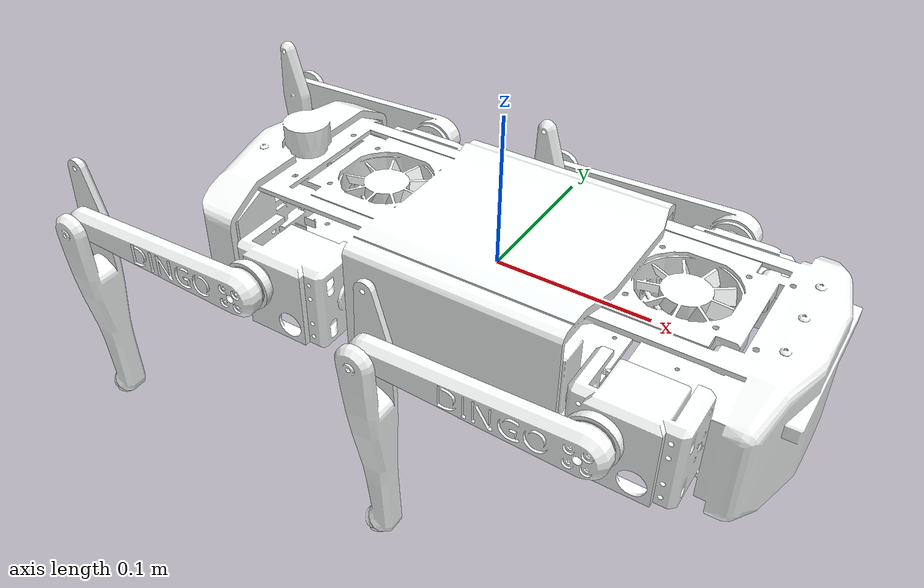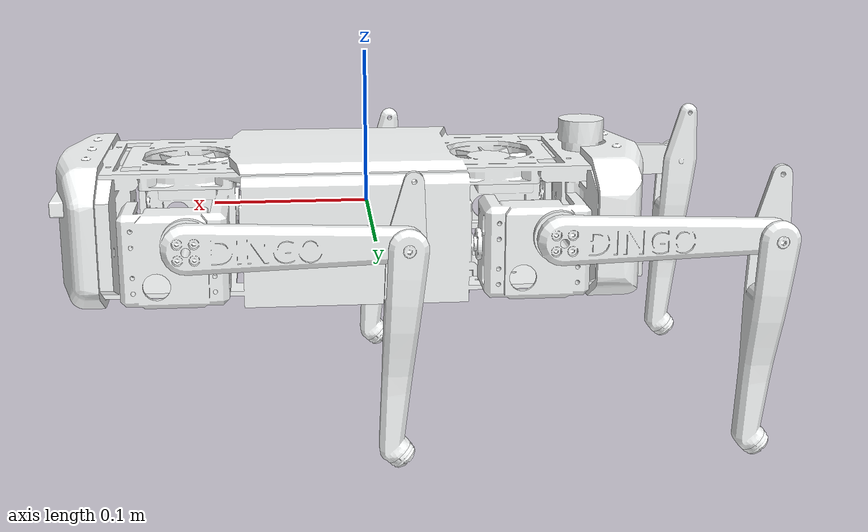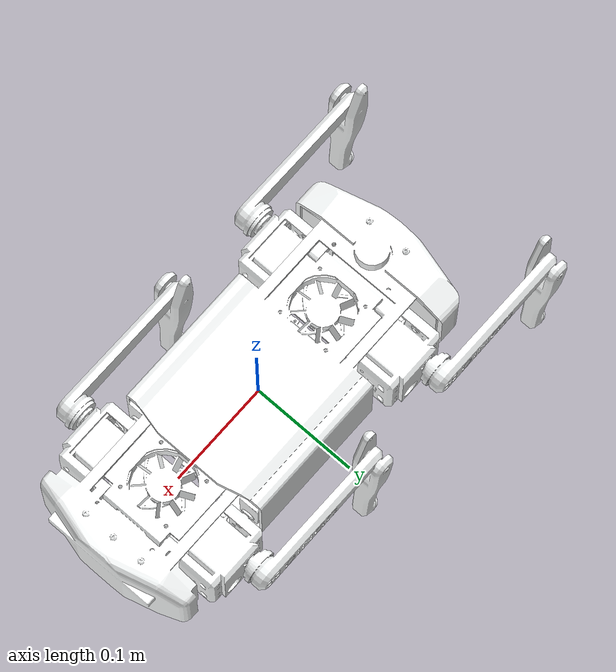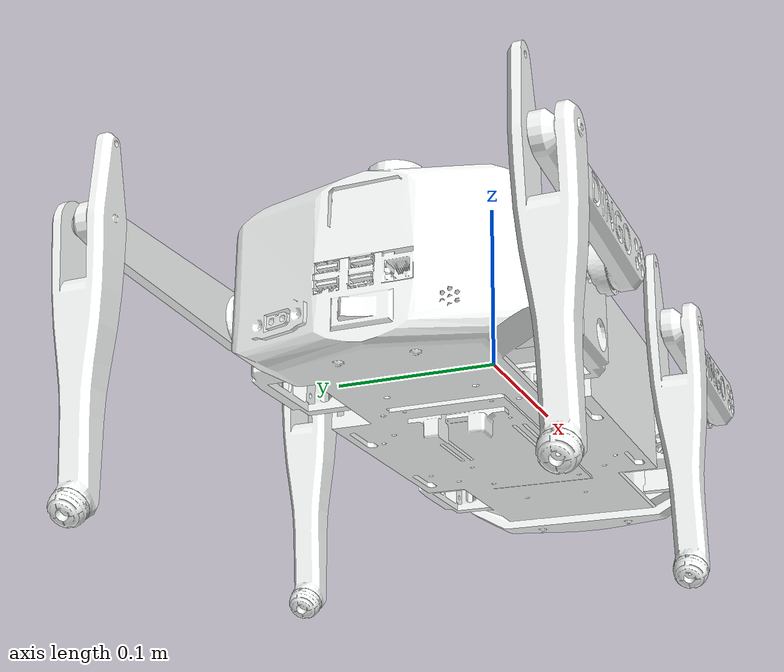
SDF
<sdf version='1.11'>
  <model name='dingo'>
    <link name='base_link'>
      <inertial>
        <pose>0 0 0 0 0 0</pose>
        <mass>0.81776000000000004</mass>
        <inertia>
          <ixx>0.00058474000000000004</ixx>
          <ixy>-1.0045000000000001e-06</ixy>
          <ixz>1.0886000000000001e-08</ixz>
          <iyy>0.00029699000000000001</iyy>
          <iyz>3.2027e-08</iyz>
          <izz>0.00063853</izz>
        </inertia>
      </inertial>
      <collision name='base_link_collision'>
        <pose>0 0 0 0 0 0</pose>
        <geometry>
          <mesh>
            <scale>1 1 1</scale>
            <uri>file:///home/houndsito/DingoQuadruped/dingo_ws/src/dingo_description/meshes/base_collision.STL</uri>
          </mesh>
        </geometry>
        <surface>
          <contact>
            <ode/>
          </contact>
          <friction>
            <ode/>
          </friction>
        </surface>
      </collision>
      <visual name='base_link_visual'>
        <pose>0 0 0 0 0 0</pose>
        <geometry>
          <mesh>
            <scale>1 1 1</scale>
            <uri>file:///home/houndsito/DingoQuadruped/dingo_ws/src/dingo_description/meshes/base_link.dae</uri>
          </mesh>
        </geometry>
        <material>
          <diffuse>0.990199983 1 1 1</diffuse>
          <ambient>0.990199983 1 1 1</ambient>
        </material>
      </visual>
      <gravity>true</gravity>
      <sensor name='imu_sensor' type='imu'>
        <always_on>true</always_on>
        <update_rate>100</update_rate>
        <visualize>true</visualize>
        <topic>__default_topic__</topic>
        <plugin name='imu_plugin' filename='libgazebo_ros_imu_sensor.so'>
          <topicName>notspot_imu/base_link_orientation</topicName>
          <bodyName>imu_link</bodyName>
          <updateRateHZ>15.0</updateRateHZ>
          <gaussianNoise>0.0</gaussianNoise>
          <xyzOffset>0 0 0</xyzOffset>
          <rpyOffset>0 0 0</rpyOffset>
          <frameName>base_link</frameName>
          <initialOrientationAsReference>false</initialOrientationAsReference>
        </plugin>
        <pose>0 0 0 0 0 0</pose>
      </sensor>
    </link>
    <joint name='FL_theta1' type='revolute'>
      <pose relative_to='base_link'>0.11165 0.060999999999999999 -0.0144 1.5708 -5.5511151231257827e-17 1.5708</pose>
      <parent>base_link</parent>
      <child>FL_link1</child>
      <axis>
        <xyz>0 0 1</xyz>
        <limit>
          <lower>-0.78539800000000004</lower>
          <upper>0.78539800000000004</upper>
          <effort>100</effort>
          <velocity>3</velocity>
        </limit>
        <dynamics>
          <spring_reference>0</spring_reference>
          <spring_stiffness>0</spring_stiffness>
        </dynamics>
      </axis>
    </joint>
    <link name='FL_link1'>
      <pose relative_to='FL_theta1'>0 0 0 0 0 0</pose>
      <inertial>
        <pose>0 0 0 0 0 0</pose>
        <mass>0.29999999999999999</mass>
        <inertia>
          <ixx>0.000193</ixx>
          <ixy>0</ixy>
          <ixz>0</ixz>
          <iyy>0.00014889999999999999</iyy>
          <iyz>0</iyz>
          <izz>0.00012410000000000001</izz>
        </inertia>
      </inertial>
      <collision name='FL_link1_collision'>
        <pose>0 0 0 0 0 0</pose>
        <geometry>
          <mesh>
            <scale>1 1 1</scale>
            <uri>file:///home/houndsito/DingoQuadruped/dingo_ws/src/dingo_description/meshes/L_link1_collision.STL</uri>
          </mesh>
        </geometry>
      </collision>
      <visual name='FL_link1_visual'>
        <pose>0 0 0 0 0 0</pose>
        <geometry>
          <mesh>
            <scale>1 1 1</scale>
            <uri>file:///home/houndsito/DingoQuadruped/dingo_ws/src/dingo_description/meshes/FL_link1.dae</uri>
          </mesh>
        </geometry>
        <material>
          <diffuse>0.990199983 1 1 1</diffuse>
          <ambient>0.990199983 1 1 1</ambient>
        </material>
      </visual>
    </link>
    <joint name='FL_theta2' type='revolute'>
      <pose relative_to='FL_link1'>0.049600000798433901 0.014400000013256 0 1.5707963434703534 1.5707956844874345 -1.5707963102922426</pose>
      <parent>FL_link1</parent>
      <child>FL_link2</child>
      <axis>
        <xyz>0 0 1</xyz>
        <limit>
          <lower>-3</lower>
          <upper>3</upper>
          <effort>100</effort>
          <velocity>3</velocity>
        </limit>
        <dynamics>
          <spring_reference>0</spring_reference>
          <spring_stiffness>0</spring_stiffness>
        </dynamics>
      </axis>
    </joint>
    <link name='FL_link2'>
      <pose relative_to='FL_theta2'>0 0 0 0 0 0</pose>
      <inertial>
        <pose>0 0 0 0 0 0</pose>
        <mass>0.10000000000000001</mass>
        <inertia>
          <ixx>6.9999999999999999e-06</ixx>
          <ixy>0</ixy>
          <ixz>4.4399999999999998e-06</ixz>
          <iyy>0.00017259999999999999</iyy>
          <iyz>0</iyz>
          <izz>0.00017568</izz>
        </inertia>
      </inertial>
      <collision name='FL_link2_collision'>
        <pose>0 0 0 0 0 0</pose>
        <geometry>
          <mesh>
            <scale>1 1 1</scale>
            <uri>file:///home/houndsito/DingoQuadruped/dingo_ws/src/dingo_description/meshes/L_link2_collision.STL</uri>
          </mesh>
        </geometry>
      </collision>
      <visual name='FL_link2_visual'>
        <pose>0 0 0 0 0 0</pose>
        <geometry>
          <mesh>
            <scale>1 1 1</scale>
            <uri>file:///home/houndsito/DingoQuadruped/dingo_ws/src/dingo_description/meshes/L_link2.dae</uri>
          </mesh>
        </geometry>
        <material>
          <diffuse>0.990199983 1 1 1</diffuse>
          <ambient>0.990199983 1 1 1</ambient>
        </material>
      </visual>
    </link>
    <joint name='FL_theta3' type='revolute'>
      <pose relative_to='FL_link2'>0.129999999999897 0 0 0 0 1.5707959477442199</pose>
      <parent>FL_link2</parent>
      <child>FL_link3</child>
      <axis>
        <xyz>0 0 1</xyz>
        <limit>
          <lower>-3</lower>
          <upper>3</upper>
          <effort>100</effort>
          <velocity>3</velocity>
        </limit>
        <dynamics>
          <spring_reference>0</spring_reference>
          <spring_stiffness>0</spring_stiffness>
        </dynamics>
      </axis>
    </joint>
    <link name='FL_link3'>
      <pose relative_to='FL_theta3'>0 0 0 0 0 0</pose>
      <inertial>
        <pose>0.023022774392048001 0 0 0 0 0</pose>
        <mass>0.12</mass>
        <inertia>
          <ixx>9.9599999999999995e-06</ixx>
          <ixy>-1.3730000000000001e-05</ixy>
          <ixz>-3.19e-06</ixz>
          <iyy>0.00051607888442428479</iyy>
          <iyz>-2.7000000000000001e-07</iyz>
          <izz>0.00051549888442428476</izz>
        </inertia>
      </inertial>
      <collision name='FL_link3_collision'>
        <pose>0 0 0 0 0 0</pose>
        <geometry>
          <mesh>
            <scale>1 1 1</scale>
            <uri>file:///home/houndsito/DingoQuadruped/dingo_ws/src/dingo_description/meshes/L_link3_collision.STL</uri>
          </mesh>
        </geometry>
      </collision>
      <collision name='FL_link3_fixed_joint_lump__FL_link4_collision_1'>
        <pose>0.13813664635228801 0 0 0 0 0</pose>
        <geometry>
          <mesh>
            <scale>1 1 1</scale>
            <uri>file:///home/houndsito/DingoQuadruped/dingo_ws/src/dingo_description/meshes/link4_collision.STL</uri>
          </mesh>
        </geometry>
        <surface>
          <contact>
            <ode>
              <kp>1000000</kp>
              <kd>100</kd>
              <min_depth>0.00020000000000000001</min_depth>
            </ode>
          </contact>
          <friction>
            <ode>
              <mu>1</mu>
              <mu2>1</mu2>
            </ode>
          </friction>
        </surface>
      </collision>
      <visual name='FL_link3_visual'>
        <pose>0 0 0 0 0 0</pose>
        <geometry>
          <mesh>
            <scale>1 1 1</scale>
            <uri>file:///home/houndsito/DingoQuadruped/dingo_ws/src/dingo_description/meshes/L_link3.dae</uri>
          </mesh>
        </geometry>
        <material>
          <diffuse>0.990199983 1 1 1</diffuse>
          <ambient>0.990199983 1 1 1</ambient>
        </material>
      </visual>
      <visual name='FL_link3_fixed_joint_lump__FL_link4_visual_1'>
        <pose>0.13813664635228801 0 0 0 0 0</pose>
        <geometry>
          <mesh>
            <scale>1 1 1</scale>
            <uri>file:///home/houndsito/DingoQuadruped/dingo_ws/src/dingo_description/meshes/link4.dae</uri>
          </mesh>
        </geometry>
        <material>
          <diffuse>0.990199983 1 1 1</diffuse>
          <ambient>0.990199983 1 1 1</ambient>
        </material>
      </visual>
    </link>
    <joint name='FR_theta1' type='revolute'>
      <pose relative_to='base_link'>0.111650000000002 -0.060999999999998798 -0.014400000000024201 1.5707963267949201 5.5511151231257827e-17 1.5707963267949003</pose>
      <parent>base_link</parent>
      <child>FR_link1</child>
      <axis>
        <xyz>0 0 -1</xyz>
        <limit>
          <lower>-0.78539800000000004</lower>
          <upper>0.78539800000000004</upper>
          <effort>100</effort>
          <velocity>3</velocity>
        </limit>
        <dynamics>
          <spring_reference>0</spring_reference>
          <spring_stiffness>0</spring_stiffness>
        </dynamics>
      </axis>
    </joint>
    <link name='FR_link1'>
      <pose relative_to='FR_theta1'>0 0 0 0 0 0</pose>
      <inertial>
        <pose>0 0 0 0 0 0</pose>
        <mass>0.29999999999999999</mass>
        <inertia>
          <ixx>0.000193</ixx>
          <ixy>0</ixy>
          <ixz>0</ixz>
          <iyy>0.00014889999999999999</iyy>
          <iyz>0</iyz>
          <izz>0.00012410000000000001</izz>
        </inertia>
      </inertial>
      <collision name='FR_link1_collision'>
        <pose>0 0 0 0 0 0</pose>
        <geometry>
          <mesh>
            <scale>1 1 1</scale>
            <uri>file:///home/houndsito/DingoQuadruped/dingo_ws/src/dingo_description/meshes/R_link1_collision.STL</uri>
          </mesh>
        </geometry>
      </collision>
      <visual name='FR_link1_visual'>
        <pose>0 0 0 0 0 0</pose>
        <geometry>
          <mesh>
            <scale>1 1 1</scale>
            <uri>file:///home/houndsito/DingoQuadruped/dingo_ws/src/dingo_description/meshes/FR_link1.dae</uri>
          </mesh>
        </geometry>
        <material>
          <diffuse>0.990199983 1 1 1</diffuse>
          <ambient>0.990199983 1 1 1</ambient>
        </material>
      </visual>
    </link>
    <joint name='FR_theta2' type='revolute'>
      <pose relative_to='FR_link1'>-0.049599999216912098 0.014400000000024201 0 1.5707963232203603 1.5707957213234747 -1.5707963303694328</pose>
      <parent>FR_link1</parent>
      <child>FR_link2</child>
      <axis>
        <xyz>0 0 1</xyz>
        <limit>
          <lower>-3</lower>
          <upper>3</upper>
          <effort>100</effort>
          <velocity>3</velocity>
        </limit>
        <dynamics>
          <spring_reference>0</spring_reference>
          <spring_stiffness>0</spring_stiffness>
        </dynamics>
      </axis>
    </joint>
    <link name='FR_link2'>
      <pose relative_to='FR_theta2'>0 0 0 0 0 0</pose>
      <inertial>
        <pose>0 0 0 0 0 0</pose>
        <mass>0.10000000000000001</mass>
        <inertia>
          <ixx>6.9999999999999999e-06</ixx>
          <ixy>0</ixy>
          <ixz>4.4399999999999998e-06</ixz>
          <iyy>0.00017259999999999999</iyy>
          <iyz>0</iyz>
          <izz>0.00017568</izz>
        </inertia>
      </inertial>
      <collision name='FR_link2_collision'>
        <pose>0 0 0 0 0 0</pose>
        <geometry>
          <mesh>
            <scale>1 1 1</scale>
            <uri>file:///home/houndsito/DingoQuadruped/dingo_ws/src/dingo_description/meshes/R_link2_collision.STL</uri>
          </mesh>
        </geometry>
      </collision>
      <visual name='FR_link2_visual'>
        <pose>0 0 0 0 0 0</pose>
        <geometry>
          <mesh>
            <scale>1 1 1</scale>
            <uri>file:///home/houndsito/DingoQuadruped/dingo_ws/src/dingo_description/meshes/R_link2.dae</uri>
          </mesh>
        </geometry>
        <material>
          <diffuse>0.990199983 1 1 1</diffuse>
          <ambient>0.990199983 1 1 1</ambient>
        </material>
      </visual>
    </link>
    <joint name='FR_theta3' type='revolute'>
      <pose relative_to='FR_link2'>0.13000000353672 0 0 0 0 1.5707959843897801</pose>
      <parent>FR_link2</parent>
      <child>FR_link3</child>
      <axis>
        <xyz>0 0 1</xyz>
        <limit>
          <lower>-3</lower>
          <upper>3</upper>
          <effort>100</effort>
          <velocity>3</velocity>
        </limit>
        <dynamics>
          <spring_reference>0</spring_reference>
          <spring_stiffness>0</spring_stiffness>
        </dynamics>
      </axis>
    </joint>
    <link name='FR_link3'>
      <pose relative_to='FR_theta3'>0 0 0 0 0 0</pose>
      <inertial>
        <pose>0.02302277439207167 0 0 0 0 0</pose>
        <mass>0.12</mass>
        <inertia>
          <ixx>9.9599999999999995e-06</ixx>
          <ixy>-1.3730000000000001e-05</ixy>
          <ixz>-3.19e-06</ixz>
          <iyy>0.00051607888442493856</iyy>
          <iyz>-2.7000000000000001e-07</iyz>
          <izz>0.00051549888442493853</izz>
        </inertia>
      </inertial>
      <collision name='FR_link3_collision'>
        <pose>0 0 0 0 0 0</pose>
        <geometry>
          <mesh>
            <scale>1 1 1</scale>
            <uri>file:///home/houndsito/DingoQuadruped/dingo_ws/src/dingo_description/meshes/R_link3_collision.STL</uri>
          </mesh>
        </geometry>
      </collision>
      <collision name='FR_link3_fixed_joint_lump__FR_link4_collision_1'>
        <pose>0.13813664635243 0 0 0 0 0</pose>
        <geometry>
          <mesh>
            <scale>1 1 1</scale>
            <uri>file:///home/houndsito/DingoQuadruped/dingo_ws/src/dingo_description/meshes/link4_collision.STL</uri>
          </mesh>
        </geometry>
        <surface>
          <contact>
            <ode>
              <kp>1000000</kp>
              <kd>100</kd>
              <min_depth>0.00020000000000000001</min_depth>
            </ode>
          </contact>
          <friction>
            <ode>
              <mu>1</mu>
              <mu2>1</mu2>
            </ode>
          </friction>
        </surface>
      </collision>
      <visual name='FR_link3_visual'>
        <pose>0 0 0 0 0 0</pose>
        <geometry>
          <mesh>
            <scale>1 1 1</scale>
            <uri>file:///home/houndsito/DingoQuadruped/dingo_ws/src/dingo_description/meshes/R_link3.dae</uri>
          </mesh>
        </geometry>
        <material>
          <diffuse>0.990199983 1 1 1</diffuse>
          <ambient>0.990199983 1 1 1</ambient>
        </material>
      </visual>
      <visual name='FR_link3_fixed_joint_lump__FR_link4_visual_1'>
        <pose>0.13813664635243 0 0 0 0 0</pose>
        <geometry>
          <mesh>
            <scale>1 1 1</scale>
            <uri>file:///home/houndsito/DingoQuadruped/dingo_ws/src/dingo_description/meshes/link4.dae</uri>
          </mesh>
        </geometry>
        <material>
          <diffuse>0.990199983 1 1 1</diffuse>
          <ambient>0.990199983 1 1 1</ambient>
        </material>
      </visual>
    </link>
    <joint name='RL_theta1' type='revolute'>
      <pose relative_to='base_link'>-0.11165 0.060999999999999999 -0.0144 1.5708 -5.5511151231257827e-17 1.5708</pose>
      <parent>base_link</parent>
      <child>RL_link1</child>
      <axis>
        <xyz>0 0 1</xyz>
        <limit>
          <lower>-0.78539800000000004</lower>
          <upper>0.78539800000000004</upper>
          <effort>100</effort>
          <velocity>3</velocity>
        </limit>
        <dynamics>
          <spring_reference>0</spring_reference>
          <spring_stiffness>0</spring_stiffness>
        </dynamics>
      </axis>
    </joint>
    <link name='RL_link1'>
      <pose relative_to='RL_theta1'>0 0 0 0 0 0</pose>
      <inertial>
        <pose>0 0 0 0 0 0</pose>
        <mass>0.29999999999999999</mass>
        <inertia>
          <ixx>0.000193</ixx>
          <ixy>0</ixy>
          <ixz>0</ixz>
          <iyy>0.00014889999999999999</iyy>
          <iyz>0</iyz>
          <izz>0.00012410000000000001</izz>
        </inertia>
      </inertial>
      <collision name='RL_link1_collision'>
        <pose>0 0 0 0 0 0</pose>
        <geometry>
          <mesh>
            <scale>1 1 1</scale>
            <uri>file:///home/houndsito/DingoQuadruped/dingo_ws/src/dingo_description/meshes/L_link1_collision.STL</uri>
          </mesh>
        </geometry>
      </collision>
      <visual name='RL_link1_visual'>
        <pose>0 0 0 0 0 0</pose>
        <geometry>
          <mesh>
            <scale>1 1 1</scale>
            <uri>file:///home/houndsito/DingoQuadruped/dingo_ws/src/dingo_description/meshes/RL_link1.dae</uri>
          </mesh>
        </geometry>
        <material>
          <diffuse>0.990199983 1 1 1</diffuse>
          <ambient>0.990199983 1 1 1</ambient>
        </material>
      </visual>
    </link>
    <joint name='RL_theta2' type='revolute'>
      <pose relative_to='RL_link1'>0.049600000798457403 0.014399999996394 0 1.5707963302509498 1.5707956843146085 -1.5707963234252447</pose>
      <parent>RL_link1</parent>
      <child>RL_link2</child>
      <axis>
        <xyz>0 0 1</xyz>
        <limit>
          <lower>-3</lower>
          <upper>3</upper>
          <effort>100</effort>
          <velocity>3</velocity>
        </limit>
        <dynamics>
          <spring_reference>0</spring_reference>
          <spring_stiffness>0</spring_stiffness>
        </dynamics>
      </axis>
    </joint>
    <link name='RL_link2'>
      <pose relative_to='RL_theta2'>0 0 0 0 0 0</pose>
      <inertial>
        <pose>0 0 0 0 0 0</pose>
        <mass>0.10000000000000001</mass>
        <inertia>
          <ixx>6.9999999999999999e-06</ixx>
          <ixy>0</ixy>
          <ixz>4.4399999999999998e-06</ixz>
          <iyy>0.00017259999999999999</iyy>
          <iyz>0</iyz>
          <izz>0.00017568</izz>
        </inertia>
      </inertial>
      <collision name='RL_link2_collision'>
        <pose>0 0 0 0 0 0</pose>
        <geometry>
          <mesh>
            <scale>1 1 1</scale>
            <uri>file:///home/houndsito/DingoQuadruped/dingo_ws/src/dingo_description/meshes/L_link2_collision.STL</uri>
          </mesh>
        </geometry>
      </collision>
      <visual name='RL_link2_visual'>
        <pose>0 0 0 0 0 0</pose>
        <geometry>
          <mesh>
            <scale>1 1 1</scale>
            <uri>file:///home/houndsito/DingoQuadruped/dingo_ws/src/dingo_description/meshes/L_link2.dae</uri>
          </mesh>
        </geometry>
        <material>
          <diffuse>0.990199983 1 1 1</diffuse>
          <ambient>0.990199983 1 1 1</ambient>
        </material>
      </visual>
    </link>
    <joint name='RL_theta3' type='revolute'>
      <pose relative_to='RL_link2'>0.12999999999484901 0 0 0 0 1.57079594787326</pose>
      <parent>RL_link2</parent>
      <child>RL_link3</child>
      <axis>
        <xyz>0 0 0.99999999999997902</xyz>
        <limit>
          <lower>-3</lower>
          <upper>3</upper>
          <effort>100</effort>
          <velocity>3</velocity>
        </limit>
        <dynamics>
          <spring_reference>0</spring_reference>
          <spring_stiffness>0</spring_stiffness>
        </dynamics>
      </axis>
    </joint>
    <link name='RL_link3'>
      <pose relative_to='RL_theta3'>0 0 0 0 0 0</pose>
      <inertial>
        <pose>0.02302277439205383 0 0 0 0 0</pose>
        <mass>0.12</mass>
        <inertia>
          <ixx>9.9599999999999995e-06</ixx>
          <ixy>-1.3730000000000001e-05</ixy>
          <ixz>-3.19e-06</ixz>
          <iyy>0.0005160788844244459</iyy>
          <iyz>-2.7000000000000001e-07</iyz>
          <izz>0.00051549888442444587</izz>
        </inertia>
      </inertial>
      <collision name='RL_link3_collision'>
        <pose>0 0 0 0 0 0</pose>
        <geometry>
          <mesh>
            <scale>1 1 1</scale>
            <uri>file:///home/houndsito/DingoQuadruped/dingo_ws/src/dingo_description/meshes/L_link3_collision.STL</uri>
          </mesh>
        </geometry>
      </collision>
      <collision name='RL_link3_fixed_joint_lump__RL_link4_collision_1'>
        <pose>0.13813664635232301 0 0 0 0 0</pose>
        <geometry>
          <mesh>
            <scale>1 1 1</scale>
            <uri>file:///home/houndsito/DingoQuadruped/dingo_ws/src/dingo_description/meshes/link4_collision.STL</uri>
          </mesh>
        </geometry>
        <surface>
          <contact>
            <ode>
              <kp>1000000</kp>
              <kd>100</kd>
              <min_depth>0.00020000000000000001</min_depth>
            </ode>
          </contact>
          <friction>
            <ode>
              <mu>1</mu>
              <mu2>1</mu2>
            </ode>
          </friction>
        </surface>
      </collision>
      <visual name='RL_link3_visual'>
        <pose>0 0 0 0 0 0</pose>
        <geometry>
          <mesh>
            <scale>1 1 1</scale>
            <uri>file:///home/houndsito/DingoQuadruped/dingo_ws/src/dingo_description/meshes/L_link3.dae</uri>
          </mesh>
        </geometry>
        <material>
          <diffuse>0.990199983 1 1 1</diffuse>
          <ambient>0.990199983 1 1 1</ambient>
        </material>
      </visual>
      <visual name='RL_link3_fixed_joint_lump__RL_link4_visual_1'>
        <pose>0.13813664635232301 0 0 0 0 0</pose>
        <geometry>
          <mesh>
            <scale>1 1 1</scale>
            <uri>file:///home/houndsito/DingoQuadruped/dingo_ws/src/dingo_description/meshes/link4.dae</uri>
          </mesh>
        </geometry>
        <material>
          <diffuse>0.990199983 1 1 1</diffuse>
          <ambient>0.990199983 1 1 1</ambient>
        </material>
      </visual>
    </link>
    <joint name='RR_theta1' type='revolute'>
      <pose relative_to='base_link'>-0.111650000000003 -0.060999999999999499 -0.0144000000000178 1.5707963267949201 5.5511151231257827e-17 1.5707963267949003</pose>
      <parent>base_link</parent>
      <child>RR_link1</child>
      <axis>
        <xyz>0 0 -1</xyz>
        <limit>
          <lower>-0.78539800000000004</lower>
          <upper>0.78539800000000004</upper>
          <effort>100</effort>
          <velocity>3</velocity>
        </limit>
        <dynamics>
          <spring_reference>0</spring_reference>
          <spring_stiffness>0</spring_stiffness>
        </dynamics>
      </axis>
    </joint>
    <link name='RR_link1'>
      <pose relative_to='RR_theta1'>0 0 0 0 0 0</pose>
      <inertial>
        <pose>0 0 0 0 0 0</pose>
        <mass>0.29999999999999999</mass>
        <inertia>
          <ixx>0.000193</ixx>
          <ixy>0</ixy>
          <ixz>0</ixz>
          <iyy>0.00014889999999999999</iyy>
          <iyz>0</iyz>
          <izz>0.00012410000000000001</izz>
        </inertia>
      </inertial>
      <collision name='RR_link1_collision'>
        <pose>0 0 0 0 0 0</pose>
        <geometry>
          <mesh>
            <scale>1 1 1</scale>
            <uri>file:///home/houndsito/DingoQuadruped/dingo_ws/src/dingo_description/meshes/R_link1_collision.STL</uri>
          </mesh>
        </geometry>
      </collision>
      <visual name='RR_link1_visual'>
        <pose>0 0 0 0 0 0</pose>
        <geometry>
          <mesh>
            <scale>1 1 1</scale>
            <uri>file:///home/houndsito/DingoQuadruped/dingo_ws/src/dingo_description/meshes/RR_link1.dae</uri>
          </mesh>
        </geometry>
        <material>
          <diffuse>0.990199983 1 1 1</diffuse>
          <ambient>0.990199983 1 1 1</ambient>
        </material>
      </visual>
    </link>
    <joint name='RR_theta2' type='revolute'>
      <pose relative_to='RR_link1'>-0.0495999992169147 0.0144000000000178 0 1.5707963201061221 1.5707957213234747 -1.5707963334836712</pose>
      <parent>RR_link1</parent>
      <child>RR_link2</child>
      <axis>
        <xyz>0 0 1</xyz>
        <limit>
          <lower>-3</lower>
          <upper>3</upper>
          <effort>100</effort>
          <velocity>3</velocity>
        </limit>
        <dynamics>
          <spring_reference>0</spring_reference>
          <spring_stiffness>0</spring_stiffness>
        </dynamics>
      </axis>
    </joint>
    <link name='RR_link2'>
      <pose relative_to='RR_theta2'>0 0 0 0 0 0</pose>
      <inertial>
        <pose>0 0 0 0 0 0</pose>
        <mass>0.10000000000000001</mass>
        <inertia>
          <ixx>6.9999999999999999e-06</ixx>
          <ixy>0</ixy>
          <ixz>4.4399999999999998e-06</ixz>
          <iyy>0.00017259999999999999</iyy>
          <iyz>0</iyz>
          <izz>0.00017568</izz>
        </inertia>
      </inertial>
      <collision name='RR_link2_collision'>
        <pose>0 0 0 0 0 0</pose>
        <geometry>
          <mesh>
            <scale>1 1 1</scale>
            <uri>file:///home/houndsito/DingoQuadruped/dingo_ws/src/dingo_description/meshes/R_link2_collision.STL</uri>
          </mesh>
        </geometry>
      </collision>
      <visual name='RR_link2_visual'>
        <pose>0 0 0 0 0 0</pose>
        <geometry>
          <mesh>
            <scale>1 1 1</scale>
            <uri>file:///home/houndsito/DingoQuadruped/dingo_ws/src/dingo_description/meshes/R_link2.dae</uri>
          </mesh>
        </geometry>
        <material>
          <diffuse>0.990199983 1 1 1</diffuse>
          <ambient>0.990199983 1 1 1</ambient>
        </material>
      </visual>
    </link>
    <joint name='RR_theta3' type='revolute'>
      <pose relative_to='RR_link2'>0.13000000353672 0 0 0 0 1.5707959843897801</pose>
      <parent>RR_link2</parent>
      <child>RR_link3</child>
      <axis>
        <xyz>0 0 0.999999999999998</xyz>
        <limit>
          <lower>-3</lower>
          <upper>3</upper>
          <effort>100</effort>
          <velocity>3</velocity>
        </limit>
        <dynamics>
          <spring_reference>0</spring_reference>
          <spring_stiffness>0</spring_stiffness>
        </dynamics>
      </axis>
    </joint>
    <link name='RR_link3'>
      <pose relative_to='RR_theta3'>0 0 0 0 0 0</pose>
      <inertial>
        <pose>0.023022774392071829 0 0 0 0 0</pose>
        <mass>0.12</mass>
        <inertia>
          <ixx>9.9599999999999995e-06</ixx>
          <ixy>-1.3730000000000001e-05</ixy>
          <ixz>-3.19e-06</ixz>
          <iyy>0.00051607888442494322</iyy>
          <iyz>-2.7000000000000001e-07</iyz>
          <izz>0.0005154988844249432</izz>
        </inertia>
      </inertial>
      <collision name='RR_link3_collision'>
        <pose>0 0 0 0 0 0</pose>
        <geometry>
          <mesh>
            <scale>1 1 1</scale>
            <uri>file:///home/houndsito/DingoQuadruped/dingo_ws/src/dingo_description/meshes/R_link3_collision.STL</uri>
          </mesh>
        </geometry>
      </collision>
      <collision name='RR_link3_fixed_joint_lump__RR_link4_collision_1'>
        <pose>0.138136646352431 0 0 0 0 0</pose>
        <geometry>
          <mesh>
            <scale>1 1 1</scale>
            <uri>file:///home/houndsito/DingoQuadruped/dingo_ws/src/dingo_description/meshes/link4_collision.STL</uri>
          </mesh>
        </geometry>
        <surface>
          <contact>
            <ode>
              <kp>1000000</kp>
              <kd>100</kd>
              <min_depth>0.00020000000000000001</min_depth>
            </ode>
          </contact>
          <friction>
            <ode>
              <mu>1</mu>
              <mu2>1</mu2>
            </ode>
          </friction>
        </surface>
      </collision>
      <visual name='RR_link3_visual'>
        <pose>0 0 0 0 0 0</pose>
        <geometry>
          <mesh>
            <scale>1 1 1</scale>
            <uri>file:///home/houndsito/DingoQuadruped/dingo_ws/src/dingo_description/meshes/R_link3.dae</uri>
          </mesh>
        </geometry>
        <material>
          <diffuse>0.990199983 1 1 1</diffuse>
          <ambient>0.990199983 1 1 1</ambient>
        </material>
      </visual>
      <visual name='RR_link3_fixed_joint_lump__RR_link4_visual_1'>
        <pose>0.138136646352431 0 0 0 0 0</pose>
        <geometry>
          <mesh>
            <scale>1 1 1</scale>
            <uri>file:///home/houndsito/DingoQuadruped/dingo_ws/src/dingo_description/meshes/link4.dae</uri>
          </mesh>
        </geometry>
        <material>
          <diffuse>0.990199983 1 1 1</diffuse>
          <ambient>0.990199983 1 1 1</ambient>
        </material>
      </visual>
    </link>
    <plugin name='gazebo_ros_control' filename='libgazebo_ros_control.so'>
      <robotNamespace>dingo_controller</robotNamespace>
    </plugin>
    <plugin name='joint_state_publisher' filename='libgazebo_ros_joint_state_publisher.so'>
      <robotNamespace>dingo_gazebo</robotNamespace>
      <jointName>FR_theta1, FR_theta2, FR_theta3, FL_theta1, FL_theta2,
                   FL_theta3, RR_theta1, RR_theta2, RR_theta3, RL_theta1,
                   RL_theta2, RL_theta3</jointName>
      <updateRate>100</updateRate>
    </plugin>
    <frame name='FL_foot' attached_to='FL_link3'>
      <pose>0.13813664635228801 0 0 0 0 0</pose>
    </frame>
    <frame name='FL_link4' attached_to='FL_foot'>
      <pose>0 0 0 0 0 0</pose>
    </frame>
    <frame name='FR_foot' attached_to='FR_link3'>
      <pose>0.13813664635243 0 0 0 0 0</pose>
    </frame>
    <frame name='FR_link4' attached_to='FR_foot'>
      <pose>0 0 0 0 0 0</pose>
    </frame>
    <frame name='RL_foot' attached_to='RL_link3'>
      <pose>0.13813664635232301 0 0 0 0 0</pose>
    </frame>
    <frame name='RL_link4' attached_to='RL_foot'>
      <pose>0 0 0 0 0 0</pose>
    </frame>
    <frame name='RR_foot' attached_to='RR_link3'>
      <pose>0.138136646352431 0 0 0 0 0</pose>
    </frame>
    <frame name='RR_link4' attached_to='RR_foot'>
      <pose>0 0 0 0 0 0</pose>
    </frame>
  </model>
</sdf>
